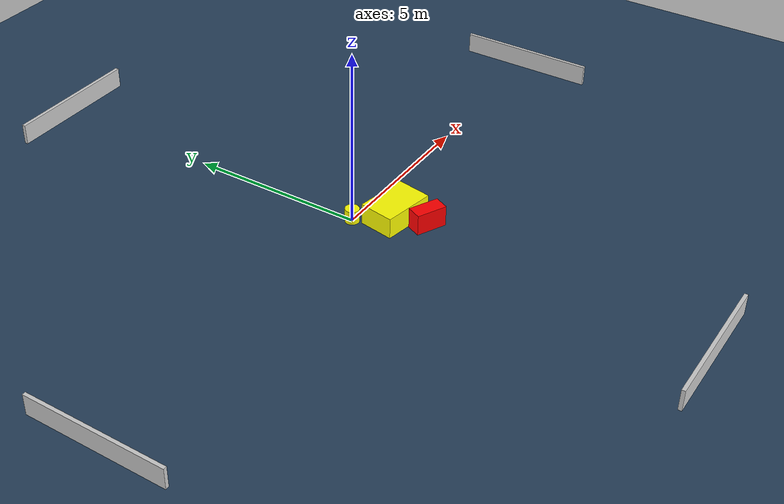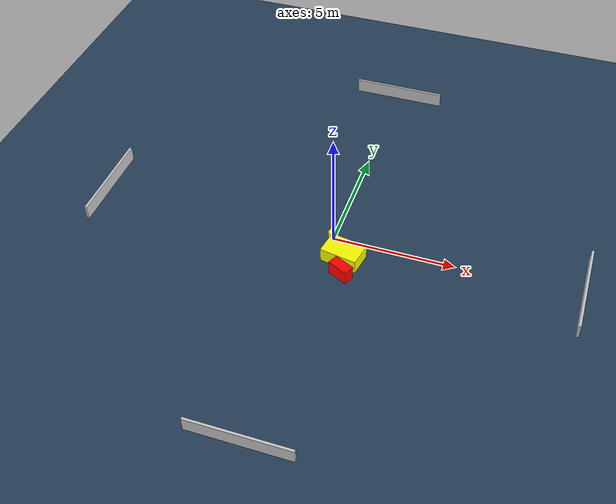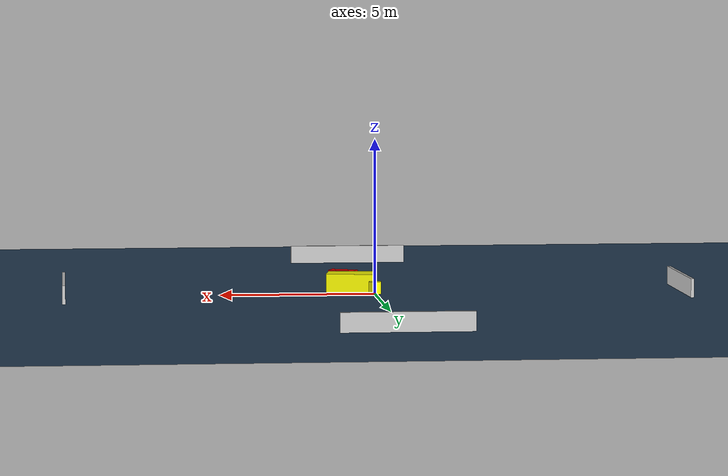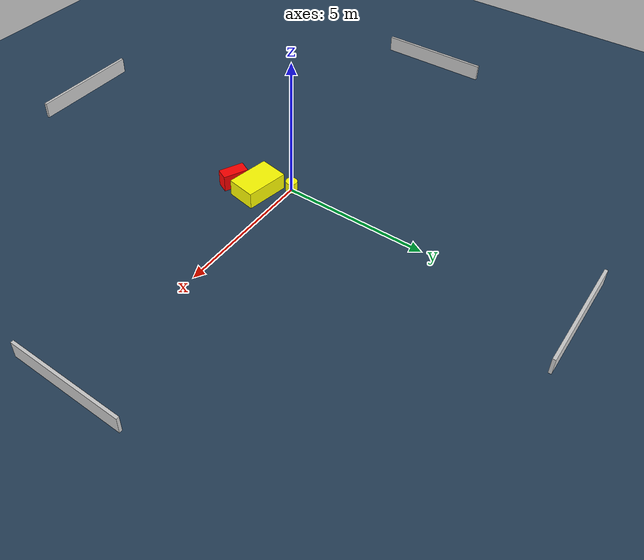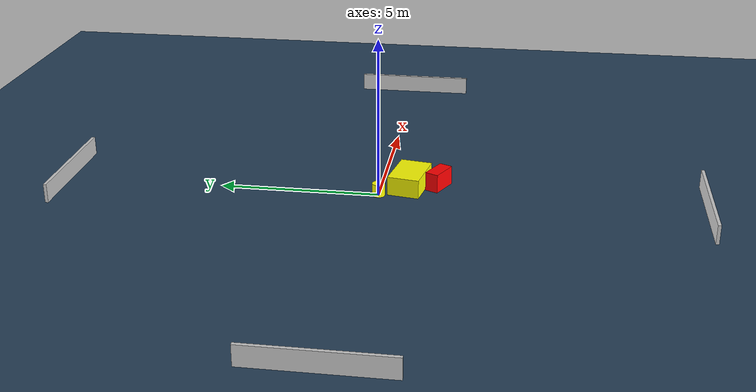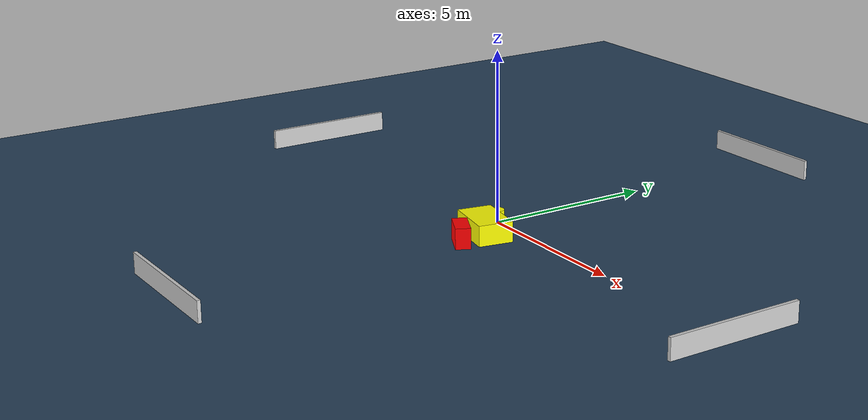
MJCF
<?xml version="1.0" ?>
<mujoco model="generated_environment">
  <option timestep="0.01" integrator="RK4" cone="elliptic"/>
  <default>
    <geom density="1"/>
  </default>
  <asset>
    <texture builtin="gradient" height="3072" name="skybox" rgb1="0.3 0.5 0.7" rgb2="0 0 0" type="skybox" width="512"/>
    <texture builtin="checker" height="300" name="groundplane" rgb1="0.2 0.3 0.4" rgb2="0.1 0.2 0.3" type="2d" width="300"/>
    <material name="groundplane" reflectance="0.2" texrepeat="5 5" texture="groundplane"/>
  </asset>
  <worldbody>
    <light dir="0 0 -1" directional="true" pos="0 0 1.5"/>
    <geom condim="3" friction="0.5 0.005 0.001" material="groundplane" name="floor" pos="0 0 0" size="0 0 0.05" type="plane"/>
    <body name="walls">
      <geom name="wall_1" condim="4" pos="-10.0 0.0 0.3" rgba="0.800000011920929 0.800000011920929 0.800000011920929 1.0" size="0.05 2.0 0.3" type="box"/>
      <geom name="wall_2" condim="4" pos="10.0 0.0 0.3" rgba="0.800000011920929 0.800000011920929 0.800000011920929 1.0" size="0.05 2.0 0.3" type="box"/>
      <geom name="wall_3" condim="4" pos="0.0 -10.0 0.3" rgba="0.800000011920929 0.800000011920929 0.800000011920929 1.0" size="2.0 0.05 0.3" type="box"/>
      <geom name="wall_4" condim="4" pos="0.0 10.0 0.3" rgba="0.800000011920929 0.800000011920929 0.800000011920929 1.0" size="2.0 0.05 0.3" type="box"/>
    </body>
    <body name="robot">
      <joint name="joint_x" type="slide" pos="0 0 0" axis="1 0 0"/>
      <joint name="joint_y" type="slide" pos="0 0 0" axis="0 1 0"/>
      <geom name="robot" type="cylinder" pos="0.0 0.0 0.2" size="0.2 0.2 0.0" mass="5.0" friction="1.0 0.005 0.0001" condim="4" rgba="1.0 1.0 0.0 1.0"/>
    </body>
    <body name="obstacle_1_movable">
      <geom name="obstacle_1_movable" condim="4" pos="0.709894317726455 -0.8937587963501472 0.3" euler="0 0 259.8962066253934" friction="0.0 0.005 0.001" rgba="1.0 1.0 0.0 1.0" size="0.501683653052498 0.758195824289787 0.3" type="box" mass="0.1"/>
      <joint type="free"/>
    </body>
    <body name="obstacle_2_static">
      <geom name="obstacle_2_static" condim="4" pos="0.8841721298418136 -1.7881045064271859 0.3" euler="0 0 334.2992700241555" friction="0.0 0.005 0.001" rgba="1.0 0.0 0.0 1.0" size="0.44116349071365657 0.21507830186920618 0.3" type="box"/>
    </body>
  </worldbody>
  <actuator>
    <motor name="actuator_x" joint="joint_x" gear="1" ctrlrange="-1 1"/>
    <motor name="actuator_y" joint="joint_y" gear="1" ctrlrange="-1 1"/>
  </actuator>
</mujoco>
